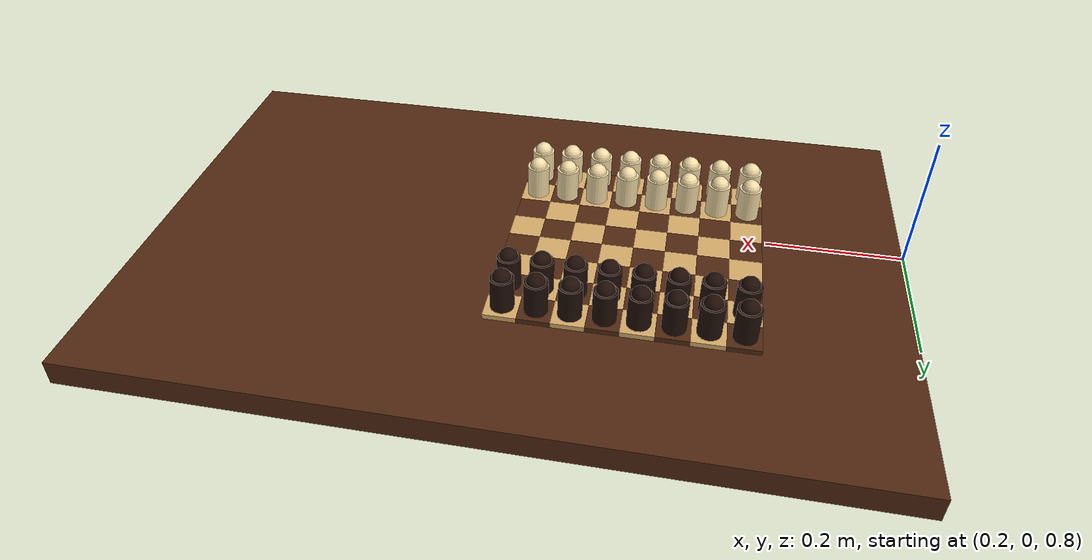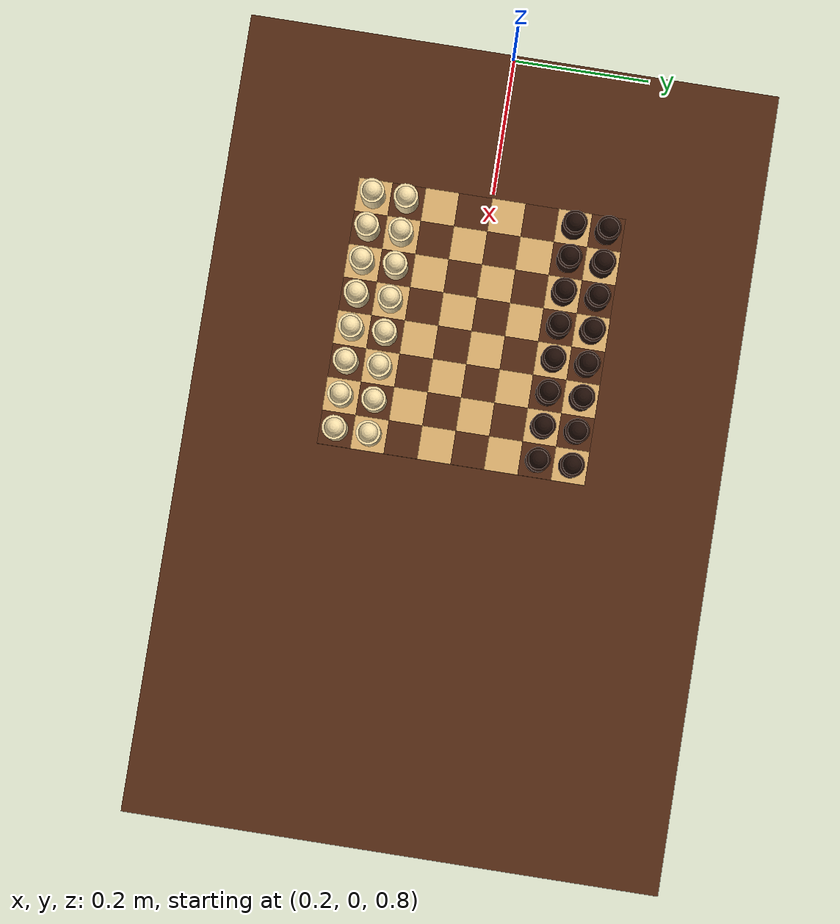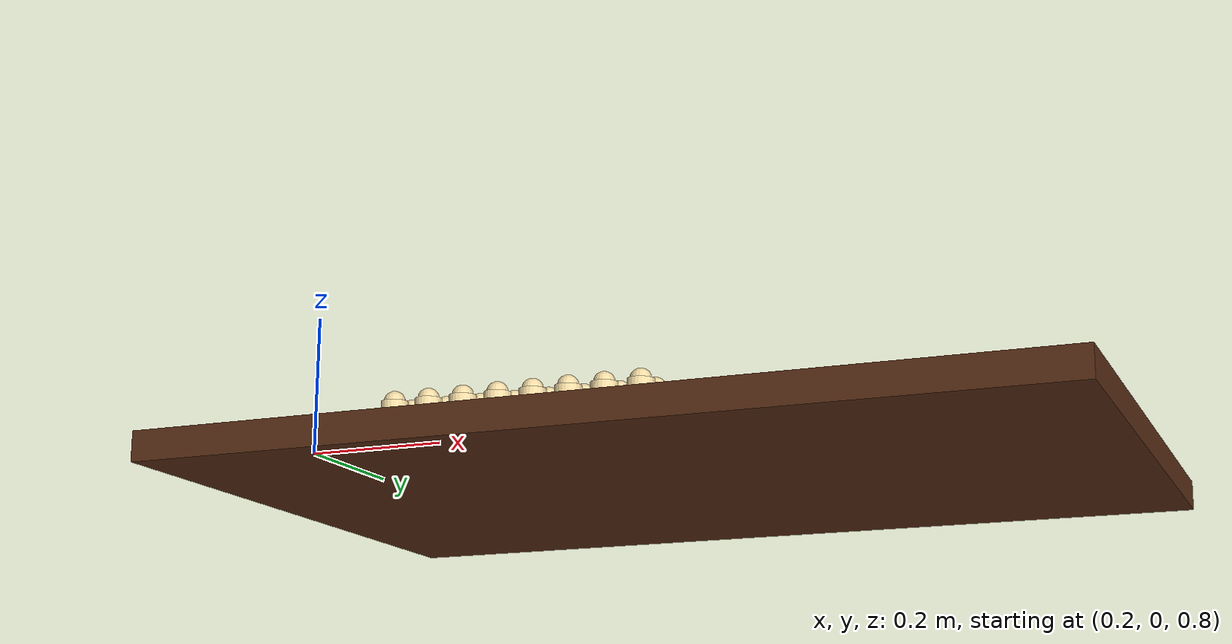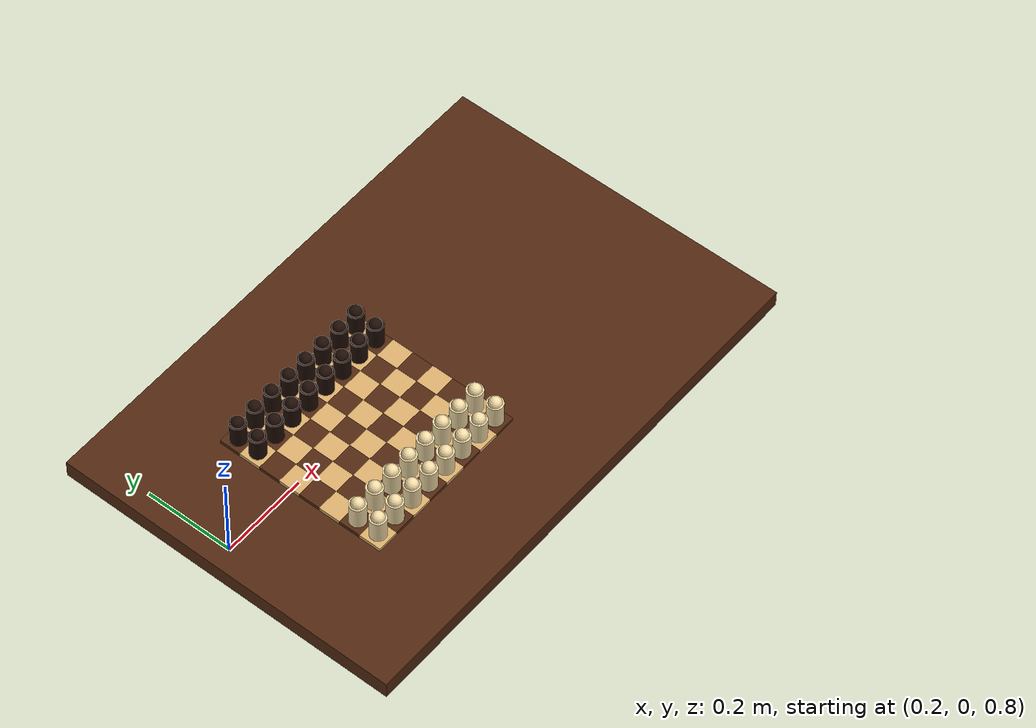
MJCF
<mujoco model="g1d_chess_piece_scene">
  <compiler angle="radian"/>
  <option timestep="0.002"/>

  <asset>
    <material name="table_mat" rgba="0.32 0.16 0.07 1"/>
    <material name="light_square" rgba="0.85 0.68 0.42 1"/>
    <material name="dark_square" rgba="0.32 0.16 0.07 1"/>
    <material name="white_piece" rgba="0.95 0.86 0.65 1"/>
    <material name="black_piece" rgba="0.12 0.05 0.025 1"/>
  </asset>

  <worldbody>
    <light pos="0 0 3"/>

    <geom name="table" type="box"
          pos="0.78 0.0 0.73"
          size="0.6 0.4 0.02"
          material="table_mat"/>

    <body name="board" pos="0.6 0.0 0.756">
      <geom type="box" pos="-0.17500000000000002 -0.17500000000000002 0.004" size="0.025 0.025 0.004" material="light_square"/>
      <geom type="box" pos="-0.125 -0.17500000000000002 0.004" size="0.025 0.025 0.004" material="dark_square"/>
      <geom type="box" pos="-0.07500000000000001 -0.17500000000000002 0.004" size="0.025 0.025 0.004" material="light_square"/>
      <geom type="box" pos="-0.025 -0.17500000000000002 0.004" size="0.025 0.025 0.004" material="dark_square"/>
      <geom type="box" pos="0.025 -0.17500000000000002 0.004" size="0.025 0.025 0.004" material="light_square"/>
      <geom type="box" pos="0.07500000000000001 -0.17500000000000002 0.004" size="0.025 0.025 0.004" material="dark_square"/>
      <geom type="box" pos="0.125 -0.17500000000000002 0.004" size="0.025 0.025 0.004" material="light_square"/>
      <geom type="box" pos="0.17500000000000002 -0.17500000000000002 0.004" size="0.025 0.025 0.004" material="dark_square"/>
      <geom type="box" pos="-0.17500000000000002 -0.125 0.004" size="0.025 0.025 0.004" material="dark_square"/>
      <geom type="box" pos="-0.125 -0.125 0.004" size="0.025 0.025 0.004" material="light_square"/>
      <geom type="box" pos="-0.07500000000000001 -0.125 0.004" size="0.025 0.025 0.004" material="dark_square"/>
      <geom type="box" pos="-0.025 -0.125 0.004" size="0.025 0.025 0.004" material="light_square"/>
      <geom type="box" pos="0.025 -0.125 0.004" size="0.025 0.025 0.004" material="dark_square"/>
      <geom type="box" pos="0.07500000000000001 -0.125 0.004" size="0.025 0.025 0.004" material="light_square"/>
      <geom type="box" pos="0.125 -0.125 0.004" size="0.025 0.025 0.004" material="dark_square"/>
      <geom type="box" pos="0.17500000000000002 -0.125 0.004" size="0.025 0.025 0.004" material="light_square"/>
      <geom type="box" pos="-0.17500000000000002 -0.07500000000000001 0.004" size="0.025 0.025 0.004" material="light_square"/>
      <geom type="box" pos="-0.125 -0.07500000000000001 0.004" size="0.025 0.025 0.004" material="dark_square"/>
      <geom type="box" pos="-0.07500000000000001 -0.07500000000000001 0.004" size="0.025 0.025 0.004" material="light_square"/>
      <geom type="box" pos="-0.025 -0.07500000000000001 0.004" size="0.025 0.025 0.004" material="dark_square"/>
      <geom type="box" pos="0.025 -0.07500000000000001 0.004" size="0.025 0.025 0.004" material="light_square"/>
      <geom type="box" pos="0.07500000000000001 -0.07500000000000001 0.004" size="0.025 0.025 0.004" material="dark_square"/>
      <geom type="box" pos="0.125 -0.07500000000000001 0.004" size="0.025 0.025 0.004" material="light_square"/>
      <geom type="box" pos="0.17500000000000002 -0.07500000000000001 0.004" size="0.025 0.025 0.004" material="dark_square"/>
      <geom type="box" pos="-0.17500000000000002 -0.025 0.004" size="0.025 0.025 0.004" material="dark_square"/>
      <geom type="box" pos="-0.125 -0.025 0.004" size="0.025 0.025 0.004" material="light_square"/>
      <geom type="box" pos="-0.07500000000000001 -0.025 0.004" size="0.025 0.025 0.004" material="dark_square"/>
      <geom type="box" pos="-0.025 -0.025 0.004" size="0.025 0.025 0.004" material="light_square"/>
      <geom type="box" pos="0.025 -0.025 0.004" size="0.025 0.025 0.004" material="dark_square"/>
      <geom type="box" pos="0.07500000000000001 -0.025 0.004" size="0.025 0.025 0.004" material="light_square"/>
      <geom type="box" pos="0.125 -0.025 0.004" size="0.025 0.025 0.004" material="dark_square"/>
      <geom type="box" pos="0.17500000000000002 -0.025 0.004" size="0.025 0.025 0.004" material="light_square"/>
      <geom type="box" pos="-0.17500000000000002 0.025 0.004" size="0.025 0.025 0.004" material="light_square"/>
      <geom type="box" pos="-0.125 0.025 0.004" size="0.025 0.025 0.004" material="dark_square"/>
      <geom type="box" pos="-0.07500000000000001 0.025 0.004" size="0.025 0.025 0.004" material="light_square"/>
      <geom type="box" pos="-0.025 0.025 0.004" size="0.025 0.025 0.004" material="dark_square"/>
      <geom type="box" pos="0.025 0.025 0.004" size="0.025 0.025 0.004" material="light_square"/>
      <geom type="box" pos="0.07500000000000001 0.025 0.004" size="0.025 0.025 0.004" material="dark_square"/>
      <geom type="box" pos="0.125 0.025 0.004" size="0.025 0.025 0.004" material="light_square"/>
      <geom type="box" pos="0.17500000000000002 0.025 0.004" size="0.025 0.025 0.004" material="dark_square"/>
      <geom type="box" pos="-0.17500000000000002 0.07500000000000001 0.004" size="0.025 0.025 0.004" material="dark_square"/>
      <geom type="box" pos="-0.125 0.07500000000000001 0.004" size="0.025 0.025 0.004" material="light_square"/>
      <geom type="box" pos="-0.07500000000000001 0.07500000000000001 0.004" size="0.025 0.025 0.004" material="dark_square"/>
      <geom type="box" pos="-0.025 0.07500000000000001 0.004" size="0.025 0.025 0.004" material="light_square"/>
      <geom type="box" pos="0.025 0.07500000000000001 0.004" size="0.025 0.025 0.004" material="dark_square"/>
      <geom type="box" pos="0.07500000000000001 0.07500000000000001 0.004" size="0.025 0.025 0.004" material="light_square"/>
      <geom type="box" pos="0.125 0.07500000000000001 0.004" size="0.025 0.025 0.004" material="dark_square"/>
      <geom type="box" pos="0.17500000000000002 0.07500000000000001 0.004" size="0.025 0.025 0.004" material="light_square"/>
      <geom type="box" pos="-0.17500000000000002 0.125 0.004" size="0.025 0.025 0.004" material="light_square"/>
      <geom type="box" pos="-0.125 0.125 0.004" size="0.025 0.025 0.004" material="dark_square"/>
      <geom type="box" pos="-0.07500000000000001 0.125 0.004" size="0.025 0.025 0.004" material="light_square"/>
      <geom type="box" pos="-0.025 0.125 0.004" size="0.025 0.025 0.004" material="dark_square"/>
      <geom type="box" pos="0.025 0.125 0.004" size="0.025 0.025 0.004" material="light_square"/>
      <geom type="box" pos="0.07500000000000001 0.125 0.004" size="0.025 0.025 0.004" material="dark_square"/>
      <geom type="box" pos="0.125 0.125 0.004" size="0.025 0.025 0.004" material="light_square"/>
      <geom type="box" pos="0.17500000000000002 0.125 0.004" size="0.025 0.025 0.004" material="dark_square"/>
      <geom type="box" pos="-0.17500000000000002 0.17500000000000002 0.004" size="0.025 0.025 0.004" material="dark_square"/>
      <geom type="box" pos="-0.125 0.17500000000000002 0.004" size="0.025 0.025 0.004" material="light_square"/>
      <geom type="box" pos="-0.07500000000000001 0.17500000000000002 0.004" size="0.025 0.025 0.004" material="dark_square"/>
      <geom type="box" pos="-0.025 0.17500000000000002 0.004" size="0.025 0.025 0.004" material="light_square"/>
      <geom type="box" pos="0.025 0.17500000000000002 0.004" size="0.025 0.025 0.004" material="dark_square"/>
      <geom type="box" pos="0.07500000000000001 0.17500000000000002 0.004" size="0.025 0.025 0.004" material="light_square"/>
      <geom type="box" pos="0.125 0.17500000000000002 0.004" size="0.025 0.025 0.004" material="dark_square"/>
      <geom type="box" pos="0.17500000000000002 0.17500000000000002 0.004" size="0.025 0.025 0.004" material="light_square"/>
    </body>

    <body name="piece_a2" pos="0.42499999999999993 -0.125 0.7895">
      <joint name="piece_a2_free" type="free"/>
      <geom type="cylinder" size="0.018 0.0275" material="white_piece"/>
      <geom type="sphere" pos="0 0 0.0275" size="0.0144" material="white_piece"/>
    </body>

    <body name="piece_a7" pos="0.42499999999999993 0.125 0.7895">
      <joint name="piece_a7_free" type="free"/>
      <geom type="cylinder" size="0.018 0.0275" material="black_piece"/>
      <geom type="sphere" pos="0 0 0.0275" size="0.0144" material="black_piece"/>
    </body>

    <body name="piece_b2" pos="0.475 -0.125 0.7895">
      <joint name="piece_b2_free" type="free"/>
      <geom type="cylinder" size="0.018 0.0275" material="white_piece"/>
      <geom type="sphere" pos="0 0 0.0275" size="0.0144" material="white_piece"/>
    </body>

    <body name="piece_b7" pos="0.475 0.125 0.7895">
      <joint name="piece_b7_free" type="free"/>
      <geom type="cylinder" size="0.018 0.0275" material="black_piece"/>
      <geom type="sphere" pos="0 0 0.0275" size="0.0144" material="black_piece"/>
    </body>

    <body name="piece_c2" pos="0.5249999999999999 -0.125 0.7895">
      <joint name="piece_c2_free" type="free"/>
      <geom type="cylinder" size="0.018 0.0275" material="white_piece"/>
      <geom type="sphere" pos="0 0 0.0275" size="0.0144" material="white_piece"/>
    </body>

    <body name="piece_c7" pos="0.5249999999999999 0.125 0.7895">
      <joint name="piece_c7_free" type="free"/>
      <geom type="cylinder" size="0.018 0.0275" material="black_piece"/>
      <geom type="sphere" pos="0 0 0.0275" size="0.0144" material="black_piece"/>
    </body>

    <body name="piece_d2" pos="0.575 -0.125 0.7895">
      <joint name="piece_d2_free" type="free"/>
      <geom type="cylinder" size="0.018 0.0275" material="white_piece"/>
      <geom type="sphere" pos="0 0 0.0275" size="0.0144" material="white_piece"/>
    </body>

    <body name="piece_d7" pos="0.575 0.125 0.7895">
      <joint name="piece_d7_free" type="free"/>
      <geom type="cylinder" size="0.018 0.0275" material="black_piece"/>
      <geom type="sphere" pos="0 0 0.0275" size="0.0144" material="black_piece"/>
    </body>

    <body name="piece_e2" pos="0.625 -0.125 0.7895">
      <joint name="piece_e2_free" type="free"/>
      <geom type="cylinder" size="0.018 0.0275" material="white_piece"/>
      <geom type="sphere" pos="0 0 0.0275" size="0.0144" material="white_piece"/>
    </body>

    <body name="piece_e7" pos="0.625 0.125 0.7895">
      <joint name="piece_e7_free" type="free"/>
      <geom type="cylinder" size="0.018 0.0275" material="black_piece"/>
      <geom type="sphere" pos="0 0 0.0275" size="0.0144" material="black_piece"/>
    </body>

    <body name="piece_f2" pos="0.675 -0.125 0.7895">
      <joint name="piece_f2_free" type="free"/>
      <geom type="cylinder" size="0.018 0.0275" material="white_piece"/>
      <geom type="sphere" pos="0 0 0.0275" size="0.0144" material="white_piece"/>
    </body>

    <body name="piece_f7" pos="0.675 0.125 0.7895">
      <joint name="piece_f7_free" type="free"/>
      <geom type="cylinder" size="0.018 0.0275" material="black_piece"/>
      <geom type="sphere" pos="0 0 0.0275" size="0.0144" material="black_piece"/>
    </body>

    <body name="piece_g2" pos="0.725 -0.125 0.7895">
      <joint name="piece_g2_free" type="free"/>
      <geom type="cylinder" size="0.018 0.0275" material="white_piece"/>
      <geom type="sphere" pos="0 0 0.0275" size="0.0144" material="white_piece"/>
    </body>

    <body name="piece_g7" pos="0.725 0.125 0.7895">
      <joint name="piece_g7_free" type="free"/>
      <geom type="cylinder" size="0.018 0.0275" material="black_piece"/>
      <geom type="sphere" pos="0 0 0.0275" size="0.0144" material="black_piece"/>
    </body>

    <body name="piece_h2" pos="0.775 -0.125 0.7895">
      <joint name="piece_h2_free" type="free"/>
      <geom type="cylinder" size="0.018 0.0275" material="white_piece"/>
      <geom type="sphere" pos="0 0 0.0275" size="0.0144" material="white_piece"/>
    </body>

    <body name="piece_h7" pos="0.775 0.125 0.7895">
      <joint name="piece_h7_free" type="free"/>
      <geom type="cylinder" size="0.018 0.0275" material="black_piece"/>
      <geom type="sphere" pos="0 0 0.0275" size="0.0144" material="black_piece"/>
    </body>

    <body name="piece_a1" pos="0.42499999999999993 -0.17500000000000002 0.7895">
      <joint name="piece_a1_free" type="free"/>
      <geom type="cylinder" size="0.018 0.0275" material="white_piece"/>
      <geom type="sphere" pos="0 0 0.0275" size="0.0144" material="white_piece"/>
    </body>

    <body name="piece_h1" pos="0.775 -0.17500000000000002 0.7895">
      <joint name="piece_h1_free" type="free"/>
      <geom type="cylinder" size="0.018 0.0275" material="white_piece"/>
      <geom type="sphere" pos="0 0 0.0275" size="0.0144" material="white_piece"/>
    </body>

    <body name="piece_b1" pos="0.475 -0.17500000000000002 0.7895">
      <joint name="piece_b1_free" type="free"/>
      <geom type="cylinder" size="0.018 0.0275" material="white_piece"/>
      <geom type="sphere" pos="0 0 0.0275" size="0.0144" material="white_piece"/>
    </body>

    <body name="piece_g1" pos="0.725 -0.17500000000000002 0.7895">
      <joint name="piece_g1_free" type="free"/>
      <geom type="cylinder" size="0.018 0.0275" material="white_piece"/>
      <geom type="sphere" pos="0 0 0.0275" size="0.0144" material="white_piece"/>
    </body>

    <body name="piece_c1" pos="0.5249999999999999 -0.17500000000000002 0.7895">
      <joint name="piece_c1_free" type="free"/>
      <geom type="cylinder" size="0.018 0.0275" material="white_piece"/>
      <geom type="sphere" pos="0 0 0.0275" size="0.0144" material="white_piece"/>
    </body>

    <body name="piece_f1" pos="0.675 -0.17500000000000002 0.7895">
      <joint name="piece_f1_free" type="free"/>
      <geom type="cylinder" size="0.018 0.0275" material="white_piece"/>
      <geom type="sphere" pos="0 0 0.0275" size="0.0144" material="white_piece"/>
    </body>

    <body name="piece_d1" pos="0.575 -0.17500000000000002 0.7895">
      <joint name="piece_d1_free" type="free"/>
      <geom type="cylinder" size="0.018 0.0275" material="white_piece"/>
      <geom type="sphere" pos="0 0 0.0275" size="0.0144" material="white_piece"/>
    </body>

    <body name="piece_e1" pos="0.625 -0.17500000000000002 0.7895">
      <joint name="piece_e1_free" type="free"/>
      <geom type="cylinder" size="0.018 0.0275" material="white_piece"/>
      <geom type="sphere" pos="0 0 0.0275" size="0.0144" material="white_piece"/>
    </body>

    <body name="piece_a8" pos="0.42499999999999993 0.17500000000000002 0.7895">
      <joint name="piece_a8_free" type="free"/>
      <geom type="cylinder" size="0.018 0.0275" material="black_piece"/>
      <geom type="sphere" pos="0 0 0.0275" size="0.0144" material="black_piece"/>
    </body>

    <body name="piece_h8" pos="0.775 0.17500000000000002 0.7895">
      <joint name="piece_h8_free" type="free"/>
      <geom type="cylinder" size="0.018 0.0275" material="black_piece"/>
      <geom type="sphere" pos="0 0 0.0275" size="0.0144" material="black_piece"/>
    </body>

    <body name="piece_b8" pos="0.475 0.17500000000000002 0.7895">
      <joint name="piece_b8_free" type="free"/>
      <geom type="cylinder" size="0.018 0.0275" material="black_piece"/>
      <geom type="sphere" pos="0 0 0.0275" size="0.0144" material="black_piece"/>
    </body>

    <body name="piece_g8" pos="0.725 0.17500000000000002 0.7895">
      <joint name="piece_g8_free" type="free"/>
      <geom type="cylinder" size="0.018 0.0275" material="black_piece"/>
      <geom type="sphere" pos="0 0 0.0275" size="0.0144" material="black_piece"/>
    </body>

    <body name="piece_c8" pos="0.5249999999999999 0.17500000000000002 0.7895">
      <joint name="piece_c8_free" type="free"/>
      <geom type="cylinder" size="0.018 0.0275" material="black_piece"/>
      <geom type="sphere" pos="0 0 0.0275" size="0.0144" material="black_piece"/>
    </body>

    <body name="piece_f8" pos="0.675 0.17500000000000002 0.7895">
      <joint name="piece_f8_free" type="free"/>
      <geom type="cylinder" size="0.018 0.0275" material="black_piece"/>
      <geom type="sphere" pos="0 0 0.0275" size="0.0144" material="black_piece"/>
    </body>

    <body name="piece_d8" pos="0.575 0.17500000000000002 0.7895">
      <joint name="piece_d8_free" type="free"/>
      <geom type="cylinder" size="0.018 0.0275" material="black_piece"/>
      <geom type="sphere" pos="0 0 0.0275" size="0.0144" material="black_piece"/>
    </body>

    <body name="piece_e8" pos="0.625 0.17500000000000002 0.7895">
      <joint name="piece_e8_free" type="free"/>
      <geom type="cylinder" size="0.018 0.0275" material="black_piece"/>
      <geom type="sphere" pos="0 0 0.0275" size="0.0144" material="black_piece"/>
    </body>

  </worldbody>
</mujoco>
